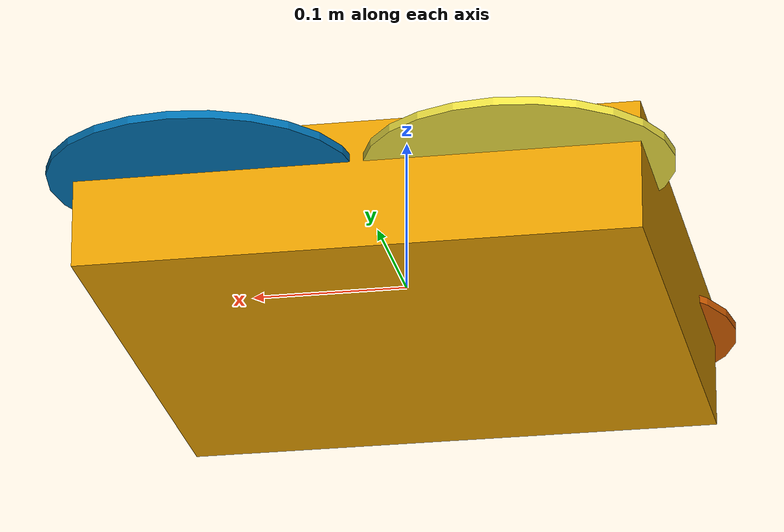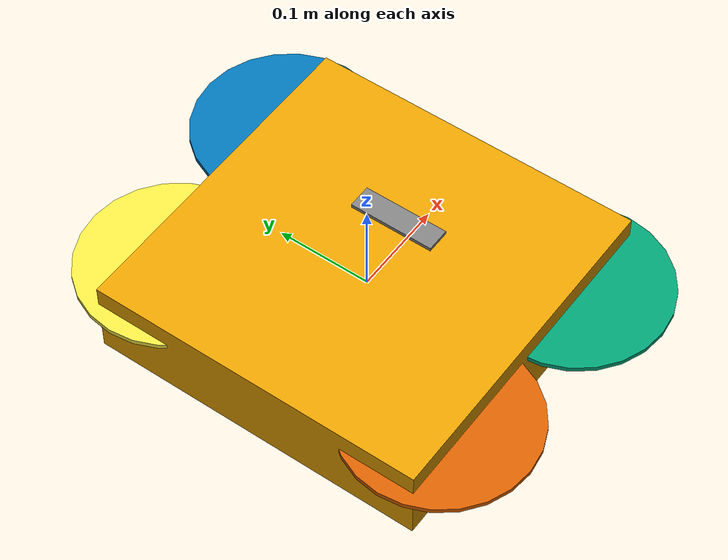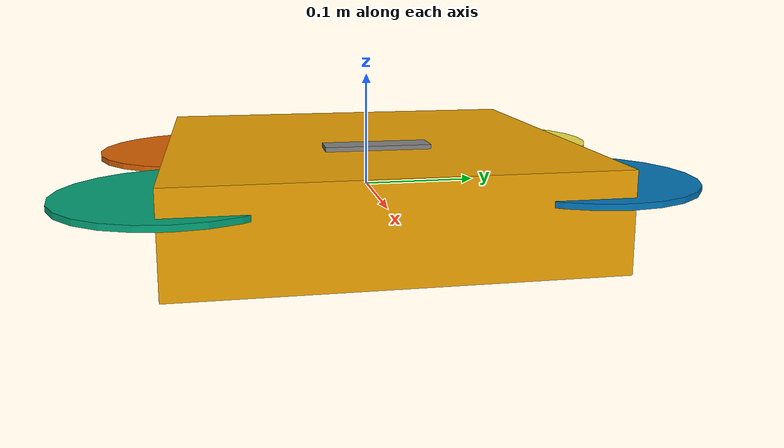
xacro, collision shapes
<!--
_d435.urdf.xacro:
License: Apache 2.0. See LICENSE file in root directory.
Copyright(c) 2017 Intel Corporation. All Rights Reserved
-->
<?xml version="1.0"?>
<robot xmlns:xacro="http://www.ros.org/wiki/xacro" name="iris">

  <xacro:arg name="scale" default="0.75"/>
  <xacro:arg name="stl_path" default="mavlink_sitl_gazebo/models/iris/meshes"/>
  <xacro:property name="scale" value="$(arg scale)" />
  <xacro:property name="stl_path" value="$(arg stl_path)" />
  <xacro:include filename="$(find rtabmap_drone_example)/urdf/drone.gazebo"/>

   <link name='base_link'>
      <inertial>
        <origin xyz="0 0 0" rpy="0 0 0"/>
        <mass value="${1.5 * scale}"/>
        <inertia
	  ixx="${0.0347563 * scale}" ixy="0.0" ixz="0.0"
	  iyy="${0.0458929 * scale}" iyz="0.0"
	  izz="${0.0977 * scale}"/>
      </inertial>
      <collision>
        <origin xyz="0 0 0" rpy="0 0 0"/>
        <geometry>
          <box size="${0.47*scale} ${0.47*scale} ${0.11*scale}"/>
        </geometry>
      </collision>
      <visual>
        <origin xyz="0 0 0" rpy="0 0 0"/>
        <geometry>
          <mesh scale="${scale} ${scale} ${scale}" filename="package://${stl_path}/iris.stl"/>
        </geometry>
      </visual>
      <gravity>1</gravity>
      <velocity_decay/>
    </link>

    <link name='imu_link'>
      <inertial>
        <origin xyz="0 0 0" rpy="0 0 0"/>
        <mass value="0.015"/>
        <inertia
	  ixx="1e-05" ixy="0.0" ixz="0.0"
	  iyy="1e-05" iyz="0.0"
	  izz="1e-05"/>
      </inertial>
    </link>
    <joint name='imu_joint' type='revolute'>
      <parent link="base_link"/>
      <child link="imu_link"/>
      <origin xyz="0 0 0" rpy="0 0 0"/>
      <axis xyz="0 1 0"/>
      <limit lower="0" upper="0" effort="0" velocity="0"/>
    </joint>
    <link name='rotor_0'>
      <inertial>
        <origin xyz="0 0 0" rpy="0 0 0"/>
        <mass value="${0.005 * scale}"/>
        <inertia
	  ixx="9.75e-07" ixy="0.0" ixz="0.0"
	  iyy="0.000273104" iyz="0.0"
	  izz="0.000274004"/>
      </inertial>
      <collision name='rotor_0_collision'>
        <origin xyz="0 0 0" rpy="0 0 0"/>
        <geometry>
          <cylinder length="0.005" radius="${scale*0.128}"/>
        </geometry>
        <surface>
          <contact>
            <ode/>
          </contact>
          <friction>
            <ode/>
          </friction>
        </surface>
      </collision>
      <visual name='rotor_0_visual'>
        <origin xyz="0 0 0" rpy="0 0 0"/>
        <geometry>
          <mesh scale="${scale} ${scale} ${scale}" filename="package://${stl_path}/iris_prop_ccw.dae"/>
        </geometry>
      </visual>
      <gravity>1</gravity>
      <velocity_decay/>
    </link>
    <joint name='rotor_0_joint' type='revolute'>
      <parent link="base_link"/>
      <child link="rotor_0"/>
      <origin xyz="${scale*0.13} ${scale*-0.22} ${scale*0.023}" rpy="0 0 0"/>
      <axis xyz="0 0 1"/>
      <limit lower="-1e+16" upper="1e+16" effort="0" velocity="0"/>
    </joint>
    <link name='rotor_1'>
      <inertial>
        <origin xyz="0 0 0" rpy="0 0 0"/>
        <mass value="${0.005 * scale}"/>
        <inertia
	  ixx="9.75e-07" ixy="0.0" ixz="0.0"
	  iyy="0.000273104" iyz="0.0"
	  izz="0.000274004"/>
      </inertial>
      <collision name='rotor_1_collision'>
        <origin xyz="0 0 0" rpy="0 0 0"/>
        <geometry>
          <cylinder length="0.005" radius="${scale*0.128}"/>
        </geometry>
        <surface>
          <contact>
            <ode/>
          </contact>
          <friction>
            <ode/>
          </friction>
        </surface>
      </collision>
      <visual name='rotor_1_visual'>
        <origin xyz="0 0 0" rpy="0 0 0"/>
        <geometry>
          <mesh scale="${scale} ${scale} ${scale}" filename="package://${stl_path}/iris_prop_ccw.dae"/>
        </geometry>
      </visual>
      <gravity>1</gravity>
      <velocity_decay/>
    </link>
    <joint name='rotor_1_joint' type='revolute'>
      <parent link="base_link"/>
      <child link="rotor_1"/>
      <origin xyz="${scale*-0.13} ${scale*0.2} ${scale*0.023}" rpy="0 0 0"/>
      <axis xyz="0 0 1"/>
      <limit lower="-1e+16" upper="1e+16" effort="0" velocity="0"/>
    </joint>
    <link name='rotor_2'>
      <inertial>
        <origin xyz="0 0 0" rpy="0 0 0"/>
        <mass value="${0.005 * scale}"/>
        <inertia
	  ixx="9.75e-07" ixy="0.0" ixz="0.0"
	  iyy="0.000273104" iyz="0.0"
	  izz="0.000274004"/>
      </inertial>
      <collision name='rotor_2_collision'>
        <origin xyz="0 0 0" rpy="0 0 0"/>
        <geometry>
          <cylinder length="0.005" radius="${scale*0.128}"/>
        </geometry>
        <surface>
          <contact>
            <ode/>
          </contact>
          <friction>
            <ode/>
          </friction>
        </surface>
      </collision>
      <visual name='rotor_2_visual'>
        <origin xyz="0 0 0" rpy="0 0 0"/>
        <geometry>
          <mesh scale="${scale} ${scale} ${scale}" filename="package://${stl_path}/iris_prop_cw.dae"/>
        </geometry>
      </visual>
      <gravity>1</gravity>
      <velocity_decay/>
    </link>
    <joint name='rotor_2_joint' type='revolute'>
      <parent link="base_link"/>
      <child link="rotor_2"/>
      <origin xyz="${scale*0.13} ${scale*0.22} ${scale*0.023}" rpy="0 0 0"/>
      <axis xyz="0 0 1"/>
      <limit lower="-1e+16" upper="1e+16" effort="0" velocity="0"/>
    </joint>
    <link name='rotor_3'>
      <inertial>
        <origin xyz="0 0 0" rpy="0 0 0"/>
        <mass value="${0.005 * scale}"/>
        <inertia
	  ixx="9.75e-07" ixy="0.0" ixz="0.0"
	  iyy="0.000273104" iyz="0.0"
	  izz="0.000274004"/>
      </inertial>
      <collision name='rotor_3_collision'>
        <origin xyz="0 0 0" rpy="0 0 0"/>
        <geometry>
          <cylinder length="0.005" radius="${scale*0.128}"/>
        </geometry>
        <surface>
          <contact>
            <ode/>
          </contact>
          <friction>
            <ode/>
          </friction>
        </surface>
      </collision>
      <visual name='rotor_3_visual'>
        <origin xyz="0 0 0" rpy="0 0 0"/>
        <geometry>
          <mesh scale="${scale} ${scale} ${scale}" filename="package://${stl_path}/iris_prop_cw.dae"/>
        </geometry>
      </visual>
      <gravity>1</gravity>
      <velocity_decay/>
    </link>
    <joint name='rotor_3_joint' type='revolute'>
      <parent link="base_link"/>
      <child link="rotor_3"/>
      <origin xyz="${scale*-0.13} ${scale*-0.2} ${scale*0.023}" rpy="0 0 0"/>
      <axis xyz="0 0 1"/>
      <limit lower="-1e+16" upper="1e+16" effort="0" velocity="0"/>
    </joint>

  <joint name="imu_body_joint" type="fixed">
    <origin xyz="0.0 0 0.0" rpy="0 0 0" />
    <parent link="base_link"/>
    <child link="imu_body_link" />
  </joint>
  <link name='imu_body_link'>
     <inertial>
       <origin xyz="0 0 0" rpy="0 0 0"/>
       <mass value="0.00001"/>
       <inertia
	  ixx="1e-05" ixy="0.0" ixz="0.0"
	  iyy="1e-05" iyz="0.0"
	  izz="1e-05"/>
       </inertial>
  </link>
  <gazebo reference="imu_body_link">
      <sensor name="imu_body_sensor" type="imu">
        <plugin filename="libgazebo_ros_imu_sensor.so" name="imu_body_plugin">
          <topicName>body_imu/data_raw</topicName>
          <bodyName>imu_body_link</bodyName>
          <updateRateHZ>100</updateRateHZ>
          <gaussianNoise>0.01</gaussianNoise>
          <xyzOffset>0 0 0</xyzOffset>
          <rpyOffset>0 0 0</rpyOffset>
          <frameName>imu_body_link</frameName>
        </plugin>
      </sensor>
  </gazebo>

<joint name="lidar_joint" type="fixed">
  <origin xyz="0.055 0.0 0.02" rpy="0.0 -4.7124  0.0" /> <!-- PITCH_270 corresponds to downward-facing -->
  <parent link="base_link" />
  <child link="lidar_link" />
</joint>

<link name="lidar_link">
  <inertial>
    <origin xyz="0.0 0.0 0.0" rpy="0.0 0.0 0.0" />
    <mass value="0.2" />
    <inertia
      ixx="0.0001" ixy="0.0" ixz="0.0"
      iyy="0.0001" iyz="0.0"
      izz="0.0001" />
  </inertial>
</link>

<gazebo reference="lidar_link">
  <sensor name="lidar_sensor" type="ray">
    <update_rate>10</update_rate>
    <ray>
      <scan>
        <horizontal>
          <samples>1</samples> <!-- Single measurement point -->
          <resolution>1</resolution>
          <min_angle>0.0</min_angle>
          <max_angle>0.0</max_angle> <!-- No scanning, single direction -->
        </horizontal>
      </scan>
      <range>
        <min>0.1</min>
        <max>10.0</max> <!-- Adjust based on your desired max range -->
        <resolution>0.01</resolution>
      </range>
      <noise>
          <type>none</type> <!-- Remove noise for debugging -->
      </noise>
    </ray>
    <plugin name="gazebo_ros_range" filename="libgazebo_ros_range.so">
      <topicName>/mavros/distance_sensor/hrlv_ez4_pub</topicName>
      <frameName>hrlv_ez4_sonar</frameName>
      <sensorPosition>
        <x>0.0</x>
        <y>0.0</y>
        <z>0</z>
      </sensorPosition>
    </plugin>
  </sensor>

</gazebo>

  <!-- Import macro for realsense-RS200 camera-->

  <!-- Create camera instance -->

    -->

   <!-- D435 WORKING-->

 <xacro:include filename="$(find rtabmap_drone_example)/urdf/_d435.urdf.xacro"/>
  <xacro:sensor_d435  parent="base_link" name="D435_camera" topics_ns="D435_camera" enable_pointCloud="true" >
    <origin xyz="0.05 0 0.02" rpy="0.0 0.0 0.0"/>
  </xacro:sensor_d435>

  <!-- D435 WORKING-->

</robot>

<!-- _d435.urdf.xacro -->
<robot name="sensor_d435" xmlns:xacro="http://ros.org/wiki/xacro">
  <!--File includes-->
  <xacro:include filename="$(find rtabmap_drone_example)/urdf/_d435.gazebo.xacro"/>

  <xacro:macro name="sensor_d435" params="parent
                                          name:=camera
                                          topics_ns:=camera
                                          align_depth:=false
                                          enable_pointCloud:=false

                                          clip_distance:=-1.0
                                          depth_width:=640
                                          depth_height:=480
                                          depth_fps:=15

                                          infra_width:=640
                                          infra_height:=480
                                          infra_fps:=15

                                          color_width:=640
                                          color_height:=480
                                          color_fps:=15

                                          visualize:=false
                                          *origin">
    <xacro:property name="M_PI" value="3.1415926535897931"/>

    <!-- The following values are approximate, and the camera node
     publishing TF values with actual calibrated camera extrinsic values -->
    <xacro:property name="d435_cam_depth_to_left_ir_offset" value="0.0"/>
    <xacro:property name="d435_cam_depth_to_right_ir_offset" value="-0.050"/>
    <xacro:property name="d435_cam_depth_to_color_offset" value="0.015"/>

    <!-- The following values model the aluminum peripherial case for the
  	D435 camera, with the camera joint represented by the actual
  	peripherial camera tripod mount -->
    <xacro:property name="d435_cam_width" value="0.090"/>
    <xacro:property name="d435_cam_height" value="0.025"/>
    <xacro:property name="d435_cam_depth" value="0.02505"/>
    <xacro:property name="d435_cam_mount_from_center_offset" value="0.0149"/>

    <!-- The following offset is relative the the physical D435 camera peripherial
  	camera tripod mount -->
    <xacro:property name="d435_cam_depth_px" value="${d435_cam_mount_from_center_offset}"/>
    <xacro:property name="d435_cam_depth_py" value="0.0175"/>
    <xacro:property name="d435_cam_depth_pz" value="${d435_cam_height/2}"/>

    <material name="${name}_aluminum">
	  <color rgba="0.5 0.5 0.5 1"/>
    </material>

    <!-- camera body, with origin at bottom screw mount -->
    <joint name="${name}_joint" type="fixed">
      <xacro:insert_block name="origin"/>
      <parent link="${parent}"/>
      <child link="${name}_bottom_screw_frame"/>
    </joint>
    <link name="${name}_bottom_screw_frame"/>

    <joint name="${name}_link_joint" type="fixed">
      <origin xyz="0 ${d435_cam_depth_py} ${d435_cam_depth_pz}" rpy="0 0 0"/>
      <parent link="${name}_bottom_screw_frame"/>
      <child link="${name}_link"/>
    </joint>

    <link name="${name}_link">
      <visual>
      <origin xyz="${d435_cam_mount_from_center_offset} ${-d435_cam_depth_py} 0" rpy="${M_PI/2} 0 ${M_PI/2}"/>
        <geometry>
          <mesh filename="package://rtabmap_drone_example/meshes/d435.dae"/>
        </geometry>
        <material name="${name}_aluminum"/>
      </visual>
      <collision>
        <origin xyz="0 ${-d435_cam_depth_py} 0" rpy="0 0 0"/>
        <geometry>
        <box size="${d435_cam_depth} ${d435_cam_width} ${d435_cam_height}"/>
        </geometry>
      </collision>
      <inertial>
        <!-- The following are not reliable values, and should not be used for modeling -->
        <mass value="0.564"/>
        <origin xyz="0 0 0"/>
        <inertia ixx="0.003881243" ixy="0.0" ixz="0.0" iyy="0.000498940" iyz="0.0" izz="0.003879257"/>
      </inertial>
    </link>

    <!-- camera depth joints and links -->
    <joint name="${name}_depth_joint" type="fixed">
      <origin xyz="0 0 0" rpy="0 0 0"/>
      <parent link="${name}_link"/>
      <child link="${name}_depth_frame"/>
    </joint>
    <link name="${name}_depth_frame"/>

    <joint name="${name}_depth_optical_joint" type="fixed">
      <origin xyz="0 0 0" rpy="${-M_PI/2} 0 ${-M_PI/2}"/>
      <parent link="${name}_depth_frame"/>
      <child link="${name}_depth_optical_frame"/>
    </joint>
    <link name="${name}_depth_optical_frame"/>

    <!-- camera left IR joints and links -->
    <joint name="${name}_left_ir_joint" type="fixed">
      <origin xyz="0 ${d435_cam_depth_to_left_ir_offset} 0" rpy="0 0 0"/>
      <parent link="${name}_depth_frame"/>
      <child link="${name}_left_ir_frame"/>
    </joint>
    <link name="${name}_left_ir_frame"/>

    <joint name="${name}_left_ir_optical_joint" type="fixed">
      <origin xyz="0 0 0" rpy="${-M_PI/2} 0 ${-M_PI/2}"/>
      <parent link="${name}_left_ir_frame"/>
      <child link="${name}_left_ir_optical_frame"/>
    </joint>
    <link name="${name}_left_ir_optical_frame"/>

    <!-- camera right IR joints and links -->
    <joint name="${name}_right_ir_joint" type="fixed">
      <origin xyz="0 ${d435_cam_depth_to_right_ir_offset} 0" rpy="0 0 0"/>
      <parent link="${name}_depth_frame"/>
      <child link="${name}_right_ir_frame"/>
    </joint>
    <link name="${name}_right_ir_frame"/>

    <joint name="${name}_right_ir_optical_joint" type="fixed">
      <origin xyz="0 0 0" rpy="${-M_PI/2} 0 ${-M_PI/2}"/>
      <parent link="${name}_right_ir_frame"/>
      <child link="${name}_right_ir_optical_frame"/>
    </joint>
    <link name="${name}_right_ir_optical_frame"/>

    <!-- camera color joints and links -->
    <joint name="${name}_color_joint" type="fixed">
      <origin xyz="0 ${d435_cam_depth_to_color_offset} 0" rpy="0 0 0"/>
      <parent link="${name}_depth_frame"/>
      <child link="${name}_color_frame"/>
    </joint>
    <link name="${name}_color_frame"/>

    <joint name="${name}_color_optical_joint" type="fixed">
      <origin xyz="0 0 0" rpy="${-M_PI/2} 0 ${-M_PI/2}"/>
      <parent link="${name}_color_frame"/>
      <child link="${name}_color_optical_frame"/>
    </joint>
    <link name="${name}_color_optical_frame"/>

    <!-- Realsense Gazebo Plugin -->
    <xacro:gazebo_d435  camera_name="${name}"
                        topics_ns="${topics_ns}"
                        reference_link="${name}_link"

                        depth_optical_frame="${name}_depth_optical_frame"
                        depth_width="${depth_width}"
                        depth_height="${depth_height}"
                        depth_fps="${depth_fps}"

                        color_optical_frame="${name}_color_optical_frame"
                        color_width="${color_width}"
                        color_height="${color_height}"
                        color_fps="${color_fps}"

                        infrared1_optical_frame="${name}_left_ir_optical_frame"
                        infrared2_optical_frame="${name}_right_ir_optical_frame"
                        infra_width="${infra_width}"
                        infra_height="${infra_height}"
                        infra_fps="${infra_fps}"

                        enable_pointCloud="${enable_pointCloud}"
                        clip_distance="${clip_distance}"
                        align_depth="${align_depth}"
                        visualize="${visualize}"
    />

  </xacro:macro>
</robot>
